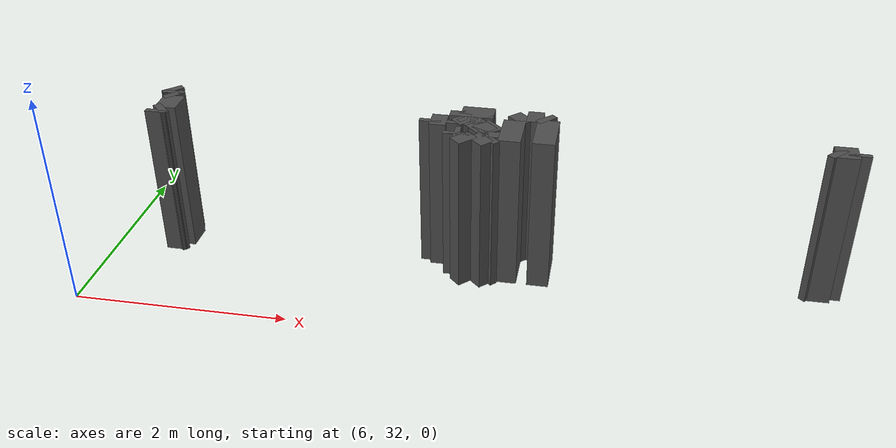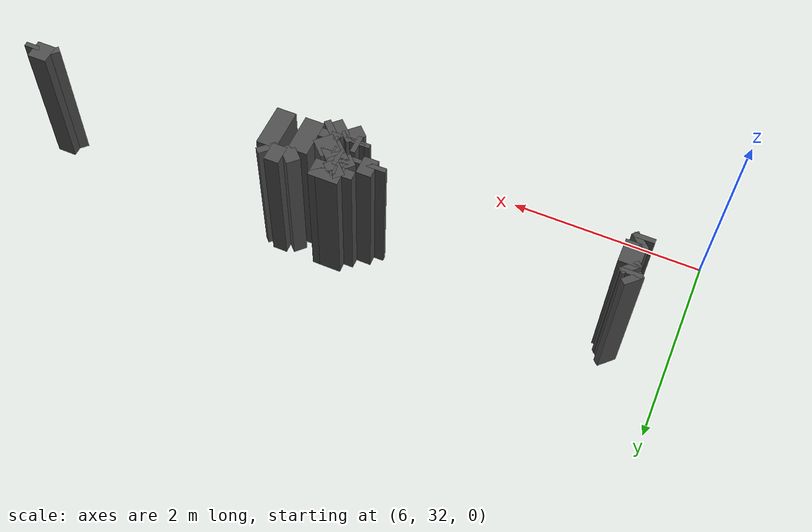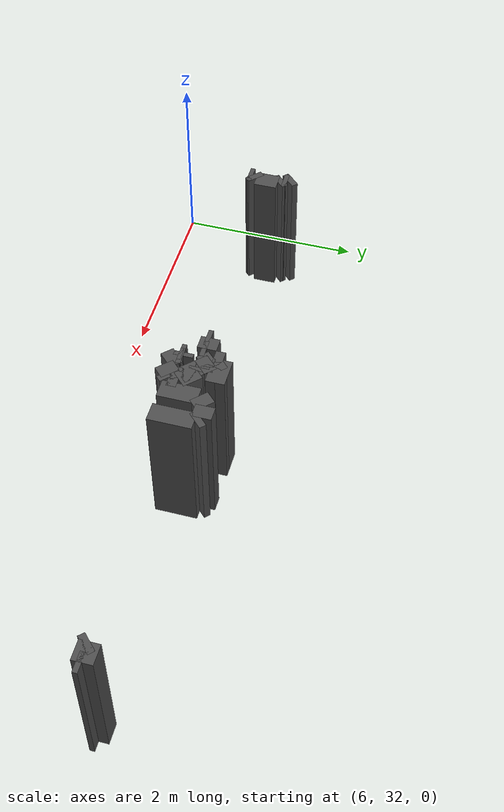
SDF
<sdf version="1.9">
 <model name="generated_walls">
  <static>true</static>
  <link name="wall_4_0">
   <pose>12.625 33.175 0.75 0 0 2.356</pose>
   <collision name="collision"><geometry><box><size>0.071 0.2 1.5</size></box></geometry></collision>
   <visual name="visual">
    <geometry><box><size>0.071 0.2 1.5</size></box></geometry>
    <material><ambient>0.3 0.3 0.3 1</ambient></material>
   </visual>
  </link>
  <link name="wall_4_1">
   <pose>12.700 33.200 0.75 0 0 0.000</pose>
   <collision name="collision"><geometry><box><size>0.200 0.2 1.5</size></box></geometry></collision>
   <visual name="visual">
    <geometry><box><size>0.200 0.2 1.5</size></box></geometry>
    <material><ambient>0.3 0.3 0.3 1</ambient></material>
   </visual>
  </link>
  <link name="wall_4_2">
   <pose>12.800 33.175 0.75 0 0 -1.571</pose>
   <collision name="collision"><geometry><box><size>0.050 0.2 1.5</size></box></geometry></collision>
   <visual name="visual">
    <geometry><box><size>0.050 0.2 1.5</size></box></geometry>
    <material><ambient>0.3 0.3 0.3 1</ambient></material>
   </visual>
  </link>
  <link name="wall_5_0">
   <pose>9.100 33.175 0.75 0 0 1.571</pose>
   <collision name="collision"><geometry><box><size>0.050 0.2 1.5</size></box></geometry></collision>
   <visual name="visual">
    <geometry><box><size>0.050 0.2 1.5</size></box></geometry>
    <material><ambient>0.3 0.3 0.3 1</ambient></material>
   </visual>
  </link>
  <link name="wall_5_1">
   <pose>9.175 33.200 0.75 0 0 0.000</pose>
   <collision name="collision"><geometry><box><size>0.150 0.2 1.5</size></box></geometry></collision>
   <visual name="visual">
    <geometry><box><size>0.150 0.2 1.5</size></box></geometry>
    <material><ambient>0.3 0.3 0.3 1</ambient></material>
   </visual>
  </link>
  <link name="wall_5_2">
   <pose>9.250 33.175 0.75 0 0 -1.571</pose>
   <collision name="collision"><geometry><box><size>0.050 0.2 1.5</size></box></geometry></collision>
   <visual name="visual">
    <geometry><box><size>0.050 0.2 1.5</size></box></geometry>
    <material><ambient>0.3 0.3 0.3 1</ambient></material>
   </visual>
  </link>
  <link name="wall_20_1">
   <pose>9.850 33.100 0.75 0 0 1.571</pose>
   <collision name="collision"><geometry><box><size>0.400 0.2 1.5</size></box></geometry></collision>
   <visual name="visual">
    <geometry><box><size>0.400 0.2 1.5</size></box></geometry>
    <material><ambient>0.3 0.3 0.3 1</ambient></material>
   </visual>
  </link>
  <link name="wall_20_2">
   <pose>9.900 33.350 0.75 0 0 0.785</pose>
   <collision name="collision"><geometry><box><size>0.141 0.2 1.5</size></box></geometry></collision>
   <visual name="visual">
    <geometry><box><size>0.141 0.2 1.5</size></box></geometry>
    <material><ambient>0.3 0.3 0.3 1</ambient></material>
   </visual>
  </link>
  <link name="wall_20_3">
   <pose>10.025 33.400 0.75 0 0 0.000</pose>
   <collision name="collision"><geometry><box><size>0.150 0.2 1.5</size></box></geometry></collision>
   <visual name="visual">
    <geometry><box><size>0.150 0.2 1.5</size></box></geometry>
    <material><ambient>0.3 0.3 0.3 1</ambient></material>
   </visual>
  </link>
  <link name="wall_20_4">
   <pose>10.125 33.375 0.75 0 0 -0.785</pose>
   <collision name="collision"><geometry><box><size>0.071 0.2 1.5</size></box></geometry></collision>
   <visual name="visual">
    <geometry><box><size>0.071 0.2 1.5</size></box></geometry>
    <material><ambient>0.3 0.3 0.3 1</ambient></material>
   </visual>
  </link>
  <link name="wall_20_5">
   <pose>10.150 33.125 0.75 0 0 -1.571</pose>
   <collision name="collision"><geometry><box><size>0.450 0.2 1.5</size></box></geometry></collision>
   <visual name="visual">
    <geometry><box><size>0.450 0.2 1.5</size></box></geometry>
    <material><ambient>0.3 0.3 0.3 1</ambient></material>
   </visual>
  </link>
  <link name="wall_21_1">
   <pose>9.350 32.975 0.75 0 0 1.571</pose>
   <collision name="collision"><geometry><box><size>0.050 0.2 1.5</size></box></geometry></collision>
   <visual name="visual">
    <geometry><box><size>0.050 0.2 1.5</size></box></geometry>
    <material><ambient>0.3 0.3 0.3 1</ambient></material>
   </visual>
  </link>
  <link name="wall_21_2">
   <pose>9.375 33.000 0.75 0 0 0.000</pose>
   <collision name="collision"><geometry><box><size>0.050 0.2 1.5</size></box></geometry></collision>
   <visual name="visual">
    <geometry><box><size>0.050 0.2 1.5</size></box></geometry>
    <material><ambient>0.3 0.3 0.3 1</ambient></material>
   </visual>
  </link>
  <link name="wall_21_3">
   <pose>9.400 32.975 0.75 0 0 -1.571</pose>
   <collision name="collision"><geometry><box><size>0.050 0.2 1.5</size></box></geometry></collision>
   <visual name="visual">
    <geometry><box><size>0.050 0.2 1.5</size></box></geometry>
    <material><ambient>0.3 0.3 0.3 1</ambient></material>
   </visual>
  </link>
  <link name="wall_21_4">
   <pose>9.450 32.900 0.75 0 0 -0.785</pose>
   <collision name="collision"><geometry><box><size>0.141 0.2 1.5</size></box></geometry></collision>
   <visual name="visual">
    <geometry><box><size>0.141 0.2 1.5</size></box></geometry>
    <material><ambient>0.3 0.3 0.3 1</ambient></material>
   </visual>
  </link>
  <link name="wall_21_6">
   <pose>9.600 32.900 0.75 0 0 0.785</pose>
   <collision name="collision"><geometry><box><size>0.141 0.2 1.5</size></box></geometry></collision>
   <visual name="visual">
    <geometry><box><size>0.141 0.2 1.5</size></box></geometry>
    <material><ambient>0.3 0.3 0.3 1</ambient></material>
   </visual>
  </link>
  <link name="wall_21_7">
   <pose>9.650 33.000 0.75 0 0 1.571</pose>
   <collision name="collision"><geometry><box><size>0.100 0.2 1.5</size></box></geometry></collision>
   <visual name="visual">
    <geometry><box><size>0.100 0.2 1.5</size></box></geometry>
    <material><ambient>0.3 0.3 0.3 1</ambient></material>
   </visual>
  </link>
  <link name="wall_21_8">
   <pose>9.575 33.125 0.75 0 0 2.356</pose>
   <collision name="collision"><geometry><box><size>0.212 0.2 1.5</size></box></geometry></collision>
   <visual name="visual">
    <geometry><box><size>0.212 0.2 1.5</size></box></geometry>
    <material><ambient>0.3 0.3 0.3 1</ambient></material>
   </visual>
  </link>
  <link name="wall_21_9">
   <pose>9.475 33.200 0.75 0 0 3.142</pose>
   <collision name="collision"><geometry><box><size>0.050 0.2 1.5</size></box></geometry></collision>
   <visual name="visual">
    <geometry><box><size>0.050 0.2 1.5</size></box></geometry>
    <material><ambient>0.3 0.3 0.3 1</ambient></material>
   </visual>
  </link>
  <link name="wall_21_10">
   <pose>9.400 33.250 0.75 0 0 2.356</pose>
   <collision name="collision"><geometry><box><size>0.141 0.2 1.5</size></box></geometry></collision>
   <visual name="visual">
    <geometry><box><size>0.141 0.2 1.5</size></box></geometry>
    <material><ambient>0.3 0.3 0.3 1</ambient></material>
   </visual>
  </link>
  <link name="wall_21_11">
   <pose>9.350 33.350 0.75 0 0 1.571</pose>
   <collision name="collision"><geometry><box><size>0.100 0.2 1.5</size></box></geometry></collision>
   <visual name="visual">
    <geometry><box><size>0.100 0.2 1.5</size></box></geometry>
    <material><ambient>0.3 0.3 0.3 1</ambient></material>
   </visual>
  </link>
  <link name="wall_21_12">
   <pose>9.500 33.400 0.75 0 0 0.000</pose>
   <collision name="collision"><geometry><box><size>0.300 0.2 1.5</size></box></geometry></collision>
   <visual name="visual">
    <geometry><box><size>0.300 0.2 1.5</size></box></geometry>
    <material><ambient>0.3 0.3 0.3 1</ambient></material>
   </visual>
  </link>
  <link name="wall_21_13">
   <pose>9.575 33.400 0.75 0 0 3.142</pose>
   <collision name="collision"><geometry><box><size>0.150 0.2 1.5</size></box></geometry></collision>
   <visual name="visual">
    <geometry><box><size>0.150 0.2 1.5</size></box></geometry>
    <material><ambient>0.3 0.3 0.3 1</ambient></material>
   </visual>
  </link>
  <link name="wall_21_14">
   <pose>9.450 33.350 0.75 0 0 -2.356</pose>
   <collision name="collision"><geometry><box><size>0.141 0.2 1.5</size></box></geometry></collision>
   <visual name="visual">
    <geometry><box><size>0.141 0.2 1.5</size></box></geometry>
    <material><ambient>0.3 0.3 0.3 1</ambient></material>
   </visual>
  </link>
  <link name="wall_21_15">
   <pose>9.450 33.250 0.75 0 0 -0.785</pose>
   <collision name="collision"><geometry><box><size>0.141 0.2 1.5</size></box></geometry></collision>
   <visual name="visual">
    <geometry><box><size>0.141 0.2 1.5</size></box></geometry>
    <material><ambient>0.3 0.3 0.3 1</ambient></material>
   </visual>
  </link>
  <link name="wall_21_16">
   <pose>9.525 33.200 0.75 0 0 0.000</pose>
   <collision name="collision"><geometry><box><size>0.050 0.2 1.5</size></box></geometry></collision>
   <visual name="visual">
    <geometry><box><size>0.050 0.2 1.5</size></box></geometry>
    <material><ambient>0.3 0.3 0.3 1</ambient></material>
   </visual>
  </link>
  <link name="wall_21_17">
   <pose>9.625 33.125 0.75 0 0 -0.785</pose>
   <collision name="collision"><geometry><box><size>0.212 0.2 1.5</size></box></geometry></collision>
   <visual name="visual">
    <geometry><box><size>0.212 0.2 1.5</size></box></geometry>
    <material><ambient>0.3 0.3 0.3 1</ambient></material>
   </visual>
  </link>
  <link name="wall_21_18">
   <pose>9.700 33.000 0.75 0 0 -1.571</pose>
   <collision name="collision"><geometry><box><size>0.100 0.2 1.5</size></box></geometry></collision>
   <visual name="visual">
    <geometry><box><size>0.100 0.2 1.5</size></box></geometry>
    <material><ambient>0.3 0.3 0.3 1</ambient></material>
   </visual>
  </link>
  <link name="wall_21_19">
   <pose>9.675 32.925 0.75 0 0 -2.356</pose>
   <collision name="collision"><geometry><box><size>0.071 0.2 1.5</size></box></geometry></collision>
   <visual name="visual">
    <geometry><box><size>0.071 0.2 1.5</size></box></geometry>
    <material><ambient>0.3 0.3 0.3 1</ambient></material>
   </visual>
  </link>
  <link name="wall_22_4">
   <pose>6.575 33.375 0.75 0 0 -0.785</pose>
   <collision name="collision"><geometry><box><size>0.071 0.2 1.5</size></box></geometry></collision>
   <visual name="visual">
    <geometry><box><size>0.071 0.2 1.5</size></box></geometry>
    <material><ambient>0.3 0.3 0.3 1</ambient></material>
   </visual>
  </link>
  <link name="wall_22_5">
   <pose>6.600 33.325 0.75 0 0 -1.571</pose>
   <collision name="collision"><geometry><box><size>0.050 0.2 1.5</size></box></geometry></collision>
   <visual name="visual">
    <geometry><box><size>0.050 0.2 1.5</size></box></geometry>
    <material><ambient>0.3 0.3 0.3 1</ambient></material>
   </visual>
  </link>
  <link name="wall_22_6">
   <pose>6.625 33.275 0.75 0 0 -0.785</pose>
   <collision name="collision"><geometry><box><size>0.071 0.2 1.5</size></box></geometry></collision>
   <visual name="visual">
    <geometry><box><size>0.071 0.2 1.5</size></box></geometry>
    <material><ambient>0.3 0.3 0.3 1</ambient></material>
   </visual>
  </link>
  <link name="wall_22_7">
   <pose>6.650 33.125 0.75 0 0 -1.571</pose>
   <collision name="collision"><geometry><box><size>0.250 0.2 1.5</size></box></geometry></collision>
   <visual name="visual">
    <geometry><box><size>0.250 0.2 1.5</size></box></geometry>
    <material><ambient>0.3 0.3 0.3 1</ambient></material>
   </visual>
  </link>
  <link name="wall_22_8">
   <pose>6.625 32.975 0.75 0 0 -2.356</pose>
   <collision name="collision"><geometry><box><size>0.071 0.2 1.5</size></box></geometry></collision>
   <visual name="visual">
    <geometry><box><size>0.071 0.2 1.5</size></box></geometry>
    <material><ambient>0.3 0.3 0.3 1</ambient></material>
   </visual>
  </link>
  <link name="wall_22_9">
   <pose>6.600 32.925 0.75 0 0 -1.571</pose>
   <collision name="collision"><geometry><box><size>0.050 0.2 1.5</size></box></geometry></collision>
   <visual name="visual">
    <geometry><box><size>0.050 0.2 1.5</size></box></geometry>
    <material><ambient>0.3 0.3 0.3 1</ambient></material>
   </visual>
  </link>
 </model>
</sdf>
